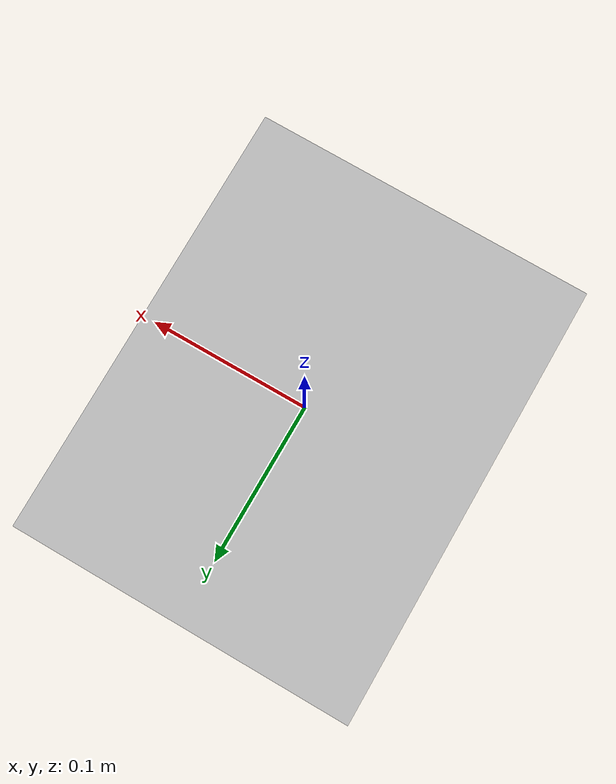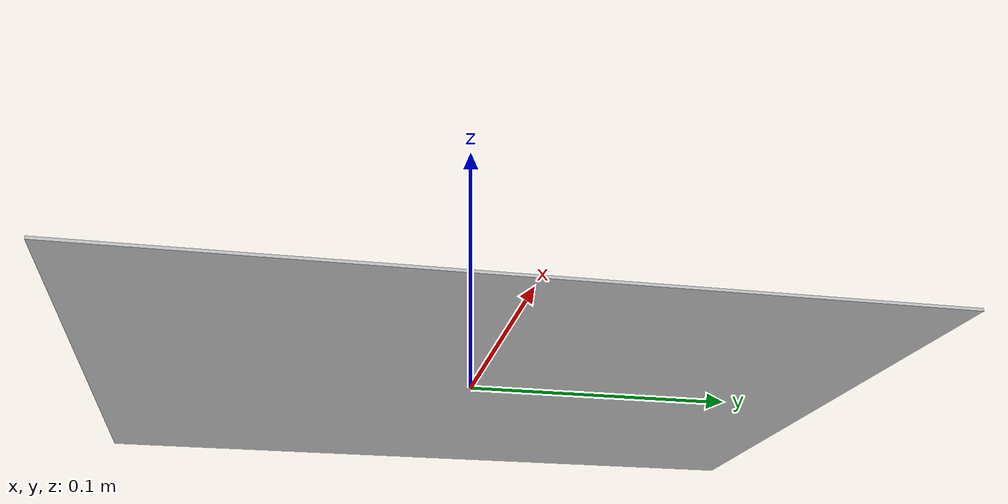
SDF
<?xml version='1.0'?>
<sdf version='1.4'>
    <model name="at36h11_mosaic">
        <static>true</static>
        <link name='link'>

            <collision name ='collision'>
                <geometry>
                    <box>
                        <size>0.2159 0.2794 0.001</size>
                    </box>
                </geometry>
            </collision>
            <visual name='visual'>
                <geometry>
                    <box>
                        <size>0.2159 0.2794 0.001</size>
                    </box>
                </geometry>

                <material>
                    <script>
                        <uri>model://at36h11_mosaic/materials/scripts</uri>
                        <uri>model://at36h11_mosaic/materials/textures</uri>
                        <name>at36h11_mosaic/Diffuse</name>
                    </script>
                </material>
            </visual>
        </link>
    </model>
</sdf>
